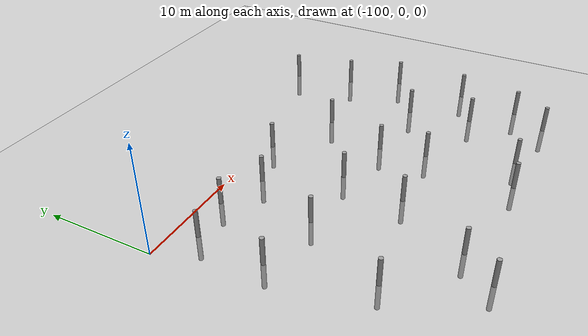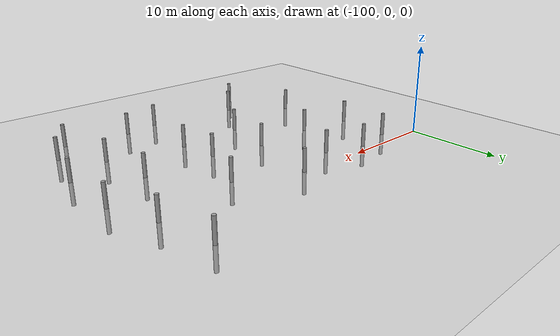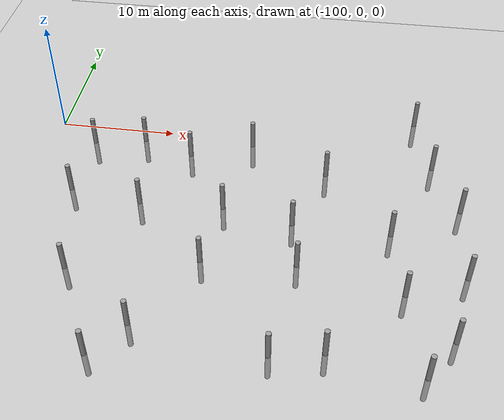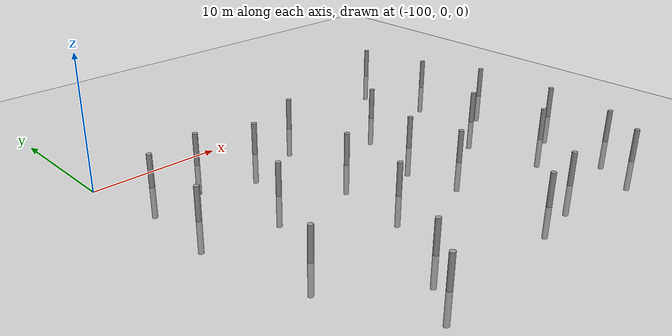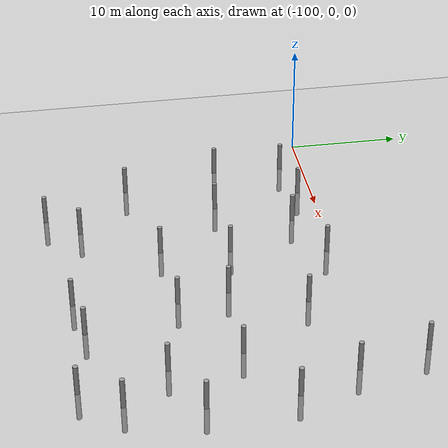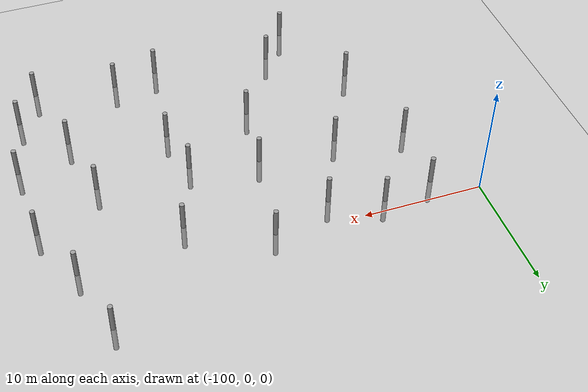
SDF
<sdf version="1.6">
 <world name="default">
  <model name="ground_plane">
   <static>1</static>
   <link name="link">
    <collision name="collision">
     <geometry><plane><normal>0 0 1</normal><size>100 100</size></plane></geometry>
     <surface><friction><ode><mu>100</mu><mu2>50</mu2></ode></friction></surface>
    </collision>
    <visual name="visual">
     <cast_shadows>0</cast_shadows>
     <geometry><plane><normal>0 0 1</normal><size>100 100</size></plane></geometry>
     <material>
      <script><uri>file://media/materials/scripts/gazebo.material</uri><name>Gazebo/Grey</name></script>
     </material>
    </visual>
   </link>
  </model>
  <model name="empty_pillars_6">
   <model name="empty_pillar_clone_53">
    <link name="link">
     <inertial>
      <mass>1</mass>
      <inertia><ixx>0.145833</ixx><ixy>0</ixy><ixz>0</ixz><iyy>0.145833</iyy><iyz>0</iyz><izz>0.125</izz></inertia>
     </inertial>
     <visual name="visual">
      <geometry><cylinder><radius>0.2</radius><length>5</length></cylinder></geometry>
      <material>
       <script><name>Gazebo/Grey</name><uri>file://media/materials/scripts/gazebo.material</uri></script>
       <shader type="vertex"><normal_map>__default__</normal_map></shader>
       <ambient>0.3 0.3 0.3 1</ambient>
       <diffuse>0.7 0.7 0.7 1</diffuse>
       <specular>0.01 0.01 0.01 1</specular>
       <emissive>0 0 0 1</emissive>
      </material>
     </visual>
     <collision name="collision">
      <geometry><cylinder><radius>0.05</radius><length>5</length></cylinder></geometry>
      <surface>
       <friction>
        <ode><mu>1</mu><mu2>1</mu2><fdir1>0 0 0</fdir1><slip1>0</slip1><slip2>0</slip2></ode>
        <torsional>
         <coefficient>1</coefficient>
         <patch_radius>0</patch_radius>
         <surface_radius>0</surface_radius>
         <use_patch_radius>1</use_patch_radius>
         <ode><slip>0</slip></ode>
        </torsional>
       </friction>
       <bounce><restitution_coefficient>0</restitution_coefficient><threshold>1e+06</threshold></bounce>
       <contact>
        <collide_without_contact>0</collide_without_contact>
        <collide_without_contact_bitmask>1</collide_without_contact_bitmask>
        <collide_bitmask>1</collide_bitmask>
        <ode>
         <soft_cfm>0</soft_cfm>
         <soft_erp>0.2</soft_erp>
         <kp>1e+13</kp>
         <kd>1</kd>
         <max_vel>0.01</max_vel>
         <min_depth>0</min_depth>
        </ode>
        <bullet>
         <split_impulse>1</split_impulse>
         <split_impulse_penetration_threshold>-0.01</split_impulse_penetration_threshold>
         <soft_cfm>0</soft_cfm>
         <soft_erp>0.2</soft_erp>
         <kp>1e+13</kp>
         <kd>1</kd>
        </bullet>
       </contact>
      </surface>
     </collision>
    </link>
    <static>0</static>
    <pose>7.32522 -23.3523 0 0 -0 0</pose>
   </model>
   <static>0</static>
   <pose>-75.8833 27.5686 0 0 -0 0</pose>
  </model>
  <model name="empty_pillars_7">
   <link name="link">
    <inertial>
     <mass>1</mass>
     <inertia><ixx>0.145833</ixx><ixy>0</ixy><ixz>0</ixz><iyy>0.145833</iyy><iyz>0</iyz><izz>0.125</izz></inertia>
    </inertial>
    <visual name="visual">
     <geometry><cylinder><radius>0.2</radius><length>5</length></cylinder></geometry>
     <material>
      <script><name>Gazebo/Grey</name><uri>file://media/materials/scripts/gazebo.material</uri></script>
      <shader type="vertex"><normal_map>__default__</normal_map></shader>
      <ambient>0.3 0.3 0.3 1</ambient>
      <diffuse>0.7 0.7 0.7 1</diffuse>
      <specular>0.01 0.01 0.01 1</specular>
      <emissive>0 0 0 1</emissive>
     </material>
    </visual>
    <collision name="collision">
     <geometry><cylinder><radius>0.05</radius><length>5</length></cylinder></geometry>
     <surface>
      <friction>
       <ode><mu>1</mu><mu2>1</mu2><fdir1>0 0 0</fdir1><slip1>0</slip1><slip2>0</slip2></ode>
       <torsional>
        <coefficient>1</coefficient>
        <patch_radius>0</patch_radius>
        <surface_radius>0</surface_radius>
        <use_patch_radius>1</use_patch_radius>
        <ode><slip>0</slip></ode>
       </torsional>
      </friction>
      <bounce><restitution_coefficient>0</restitution_coefficient><threshold>1e+06</threshold></bounce>
      <contact>
       <collide_without_contact>0</collide_without_contact>
       <collide_without_contact_bitmask>1</collide_without_contact_bitmask>
       <collide_bitmask>1</collide_bitmask>
       <ode>
        <soft_cfm>0</soft_cfm>
        <soft_erp>0.2</soft_erp>
        <kp>1e+13</kp>
        <kd>1</kd>
        <max_vel>0.01</max_vel>
        <min_depth>0</min_depth>
       </ode>
       <bullet>
        <split_impulse>1</split_impulse>
        <split_impulse_penetration_threshold>-0.01</split_impulse_penetration_threshold>
        <soft_cfm>0</soft_cfm>
        <soft_erp>0.2</soft_erp>
        <kp>1e+13</kp>
        <kd>1</kd>
       </bullet>
      </contact>
     </surface>
    </collision>
   </link>
   <model name="empty_pillar">
    <link name="link">
     <inertial>
      <mass>1</mass>
      <inertia><ixx>0.145833</ixx><ixy>0</ixy><ixz>0</ixz><iyy>0.145833</iyy><iyz>0</iyz><izz>0.125</izz></inertia>
     </inertial>
     <visual name="visual">
      <geometry><cylinder><radius>0.2</radius><length>5</length></cylinder></geometry>
      <material>
       <script><name>Gazebo/Grey</name><uri>file://media/materials/scripts/gazebo.material</uri></script>
       <shader type="vertex"><normal_map>__default__</normal_map></shader>
       <ambient>0.3 0.3 0.3 1</ambient>
       <diffuse>0.7 0.7 0.7 1</diffuse>
       <specular>0.01 0.01 0.01 1</specular>
       <emissive>0 0 0 1</emissive>
      </material>
     </visual>
     <collision name="collision">
      <geometry><cylinder><radius>0.05</radius><length>5</length></cylinder></geometry>
      <surface>
       <friction>
        <ode><mu>1</mu><mu2>1</mu2><fdir1>0 0 0</fdir1><slip1>0</slip1><slip2>0</slip2></ode>
        <torsional>
         <coefficient>1</coefficient>
         <patch_radius>0</patch_radius>
         <surface_radius>0</surface_radius>
         <use_patch_radius>1</use_patch_radius>
         <ode><slip>0</slip></ode>
        </torsional>
       </friction>
       <bounce><restitution_coefficient>0</restitution_coefficient><threshold>1e+06</threshold></bounce>
       <contact>
        <collide_without_contact>0</collide_without_contact>
        <collide_without_contact_bitmask>1</collide_without_contact_bitmask>
        <collide_bitmask>1</collide_bitmask>
        <ode>
         <soft_cfm>0</soft_cfm>
         <soft_erp>0.2</soft_erp>
         <kp>1e+13</kp>
         <kd>1</kd>
         <max_vel>0.01</max_vel>
         <min_depth>0</min_depth>
        </ode>
        <bullet>
         <split_impulse>1</split_impulse>
         <split_impulse_penetration_threshold>-0.01</split_impulse_penetration_threshold>
         <soft_cfm>0</soft_cfm>
         <soft_erp>0.2</soft_erp>
         <kp>1e+13</kp>
         <kd>1</kd>
        </bullet>
       </contact>
      </surface>
     </collision>
    </link>
    <static>0</static>
    <pose>-3.84527 -0.717439 0 0 -0 0</pose>
   </model>
   <model name="empty_pillar_clone_1">
    <link name="link">
     <inertial>
      <mass>1</mass>
      <inertia><ixx>0.145833</ixx><ixy>0</ixy><ixz>0</ixz><iyy>0.145833</iyy><iyz>0</iyz><izz>0.125</izz></inertia>
     </inertial>
     <visual name="visual">
      <geometry><cylinder><radius>0.2</radius><length>5</length></cylinder></geometry>
      <material>
       <script><name>Gazebo/Grey</name><uri>file://media/materials/scripts/gazebo.material</uri></script>
       <shader type="vertex"><normal_map>__default__</normal_map></shader>
       <ambient>0.3 0.3 0.3 1</ambient>
       <diffuse>0.7 0.7 0.7 1</diffuse>
       <specular>0.01 0.01 0.01 1</specular>
       <emissive>0 0 0 1</emissive>
      </material>
     </visual>
     <collision name="collision">
      <geometry><cylinder><radius>0.05</radius><length>5</length></cylinder></geometry>
      <surface>
       <friction>
        <ode><mu>1</mu><mu2>1</mu2><fdir1>0 0 0</fdir1><slip1>0</slip1><slip2>0</slip2></ode>
        <torsional>
         <coefficient>1</coefficient>
         <patch_radius>0</patch_radius>
         <surface_radius>0</surface_radius>
         <use_patch_radius>1</use_patch_radius>
         <ode><slip>0</slip></ode>
        </torsional>
       </friction>
       <bounce><restitution_coefficient>0</restitution_coefficient><threshold>1e+06</threshold></bounce>
       <contact>
        <collide_without_contact>0</collide_without_contact>
        <collide_without_contact_bitmask>1</collide_without_contact_bitmask>
        <collide_bitmask>1</collide_bitmask>
        <ode>
         <soft_cfm>0</soft_cfm>
         <soft_erp>0.2</soft_erp>
         <kp>1e+13</kp>
         <kd>1</kd>
         <max_vel>0.01</max_vel>
         <min_depth>0</min_depth>
        </ode>
        <bullet>
         <split_impulse>1</split_impulse>
         <split_impulse_penetration_threshold>-0.01</split_impulse_penetration_threshold>
         <soft_cfm>0</soft_cfm>
         <soft_erp>0.2</soft_erp>
         <kp>1e+13</kp>
         <kd>1</kd>
        </bullet>
       </contact>
      </surface>
     </collision>
    </link>
    <static>0</static>
    <pose>8.92248 2.14838 0 0 -0 0</pose>
   </model>
   <model name="empty_pillar_clone_14">
    <link name="link">
     <inertial>
      <mass>1</mass>
      <inertia><ixx>0.145833</ixx><ixy>0</ixy><ixz>0</ixz><iyy>0.145833</iyy><iyz>0</iyz><izz>0.125</izz></inertia>
     </inertial>
     <visual name="visual">
      <geometry><cylinder><radius>0.2</radius><length>5</length></cylinder></geometry>
      <material>
       <script><name>Gazebo/Grey</name><uri>file://media/materials/scripts/gazebo.material</uri></script>
       <shader type="vertex"><normal_map>__default__</normal_map></shader>
       <ambient>0.3 0.3 0.3 1</ambient>
       <diffuse>0.7 0.7 0.7 1</diffuse>
       <specular>0.01 0.01 0.01 1</specular>
       <emissive>0 0 0 1</emissive>
      </material>
     </visual>
     <collision name="collision">
      <geometry><cylinder><radius>0.05</radius><length>5</length></cylinder></geometry>
      <surface>
       <friction>
        <ode><mu>1</mu><mu2>1</mu2><fdir1>0 0 0</fdir1><slip1>0</slip1><slip2>0</slip2></ode>
        <torsional>
         <coefficient>1</coefficient>
         <patch_radius>0</patch_radius>
         <surface_radius>0</surface_radius>
         <use_patch_radius>1</use_patch_radius>
         <ode><slip>0</slip></ode>
        </torsional>
       </friction>
       <bounce><restitution_coefficient>0</restitution_coefficient><threshold>1e+06</threshold></bounce>
       <contact>
        <collide_without_contact>0</collide_without_contact>
        <collide_without_contact_bitmask>1</collide_without_contact_bitmask>
        <collide_bitmask>1</collide_bitmask>
        <ode>
         <soft_cfm>0</soft_cfm>
         <soft_erp>0.2</soft_erp>
         <kp>1e+13</kp>
         <kd>1</kd>
         <max_vel>0.01</max_vel>
         <min_depth>0</min_depth>
        </ode>
        <bullet>
         <split_impulse>1</split_impulse>
         <split_impulse_penetration_threshold>-0.01</split_impulse_penetration_threshold>
         <soft_cfm>0</soft_cfm>
         <soft_erp>0.2</soft_erp>
         <kp>1e+13</kp>
         <kd>1</kd>
        </bullet>
       </contact>
      </surface>
     </collision>
    </link>
    <static>0</static>
    <pose>-14.0146 0.646152 0 0 -0 0</pose>
   </model>
   <model name="empty_pillar_clone_16">
    <link name="link">
     <inertial>
      <mass>1</mass>
      <inertia><ixx>0.145833</ixx><ixy>0</ixy><ixz>0</ixz><iyy>0.145833</iyy><iyz>0</iyz><izz>0.125</izz></inertia>
     </inertial>
     <visual name="visual">
      <geometry><cylinder><radius>0.2</radius><length>5</length></cylinder></geometry>
      <material>
       <script><name>Gazebo/Grey</name><uri>file://media/materials/scripts/gazebo.material</uri></script>
       <shader type="vertex"><normal_map>__default__</normal_map></shader>
       <ambient>0.3 0.3 0.3 1</ambient>
       <diffuse>0.7 0.7 0.7 1</diffuse>
       <specular>0.01 0.01 0.01 1</specular>
       <emissive>0 0 0 1</emissive>
      </material>
     </visual>
     <collision name="collision">
      <geometry><cylinder><radius>0.05</radius><length>5</length></cylinder></geometry>
      <surface>
       <friction>
        <ode><mu>1</mu><mu2>1</mu2><fdir1>0 0 0</fdir1><slip1>0</slip1><slip2>0</slip2></ode>
        <torsional>
         <coefficient>1</coefficient>
         <patch_radius>0</patch_radius>
         <surface_radius>0</surface_radius>
         <use_patch_radius>1</use_patch_radius>
         <ode><slip>0</slip></ode>
        </torsional>
       </friction>
       <bounce><restitution_coefficient>0</restitution_coefficient><threshold>1e+06</threshold></bounce>
       <contact>
        <collide_without_contact>0</collide_without_contact>
        <collide_without_contact_bitmask>1</collide_without_contact_bitmask>
        <collide_bitmask>1</collide_bitmask>
        <ode>
         <soft_cfm>0</soft_cfm>
         <soft_erp>0.2</soft_erp>
         <kp>1e+13</kp>
         <kd>1</kd>
         <max_vel>0.01</max_vel>
         <min_depth>0</min_depth>
        </ode>
        <bullet>
         <split_impulse>1</split_impulse>
         <split_impulse_penetration_threshold>-0.01</split_impulse_penetration_threshold>
         <soft_cfm>0</soft_cfm>
         <soft_erp>0.2</soft_erp>
         <kp>1e+13</kp>
         <kd>1</kd>
        </bullet>
       </contact>
      </surface>
     </collision>
    </link>
    <static>0</static>
    <pose>-9.20789 13.0504 0 0 -0 0</pose>
   </model>
   <model name="empty_pillar_clone_17">
    <link name="link">
     <inertial>
      <mass>1</mass>
      <inertia><ixx>0.145833</ixx><ixy>0</ixy><ixz>0</ixz><iyy>0.145833</iyy><iyz>0</iyz><izz>0.125</izz></inertia>
     </inertial>
     <visual name="visual">
      <geometry><cylinder><radius>0.2</radius><length>5</length></cylinder></geometry>
      <material>
       <script><name>Gazebo/Grey</name><uri>file://media/materials/scripts/gazebo.material</uri></script>
       <shader type="vertex"><normal_map>__default__</normal_map></shader>
       <ambient>0.3 0.3 0.3 1</ambient>
       <diffuse>0.7 0.7 0.7 1</diffuse>
       <specular>0.01 0.01 0.01 1</specular>
       <emissive>0 0 0 1</emissive>
      </material>
     </visual>
     <collision name="collision">
      <geometry><cylinder><radius>0.05</radius><length>5</length></cylinder></geometry>
      <surface>
       <friction>
        <ode><mu>1</mu><mu2>1</mu2><fdir1>0 0 0</fdir1><slip1>0</slip1><slip2>0</slip2></ode>
        <torsional>
         <coefficient>1</coefficient>
         <patch_radius>0</patch_radius>
         <surface_radius>0</surface_radius>
         <use_patch_radius>1</use_patch_radius>
         <ode><slip>0</slip></ode>
        </torsional>
       </friction>
       <bounce><restitution_coefficient>0</restitution_coefficient><threshold>1e+06</threshold></bounce>
       <contact>
        <collide_without_contact>0</collide_without_contact>
        <collide_without_contact_bitmask>1</collide_without_contact_bitmask>
        <collide_bitmask>1</collide_bitmask>
        <ode>
         <soft_cfm>0</soft_cfm>
         <soft_erp>0.2</soft_erp>
         <kp>1e+13</kp>
         <kd>1</kd>
         <max_vel>0.01</max_vel>
         <min_depth>0</min_depth>
        </ode>
        <bullet>
         <split_impulse>1</split_impulse>
         <split_impulse_penetration_threshold>-0.01</split_impulse_penetration_threshold>
         <soft_cfm>0</soft_cfm>
         <soft_erp>0.2</soft_erp>
         <kp>1e+13</kp>
         <kd>1</kd>
        </bullet>
       </contact>
      </surface>
     </collision>
    </link>
    <static>0</static>
    <pose>-16.0449 12.755 0 0 -0 0</pose>
   </model>
   <model name="empty_pillar_clone_18">
    <link name="link">
     <inertial>
      <mass>1</mass>
      <inertia><ixx>0.145833</ixx><ixy>0</ixy><ixz>0</ixz><iyy>0.145833</iyy><iyz>0</iyz><izz>0.125</izz></inertia>
     </inertial>
     <visual name="visual">
      <geometry><cylinder><radius>0.2</radius><length>5</length></cylinder></geometry>
      <material>
       <script><name>Gazebo/Grey</name><uri>file://media/materials/scripts/gazebo.material</uri></script>
       <shader type="vertex"><normal_map>__default__</normal_map></shader>
       <ambient>0.3 0.3 0.3 1</ambient>
       <diffuse>0.7 0.7 0.7 1</diffuse>
       <specular>0.01 0.01 0.01 1</specular>
       <emissive>0 0 0 1</emissive>
      </material>
     </visual>
     <collision name="collision">
      <geometry><cylinder><radius>0.05</radius><length>5</length></cylinder></geometry>
      <surface>
       <friction>
        <ode><mu>1</mu><mu2>1</mu2><fdir1>0 0 0</fdir1><slip1>0</slip1><slip2>0</slip2></ode>
        <torsional>
         <coefficient>1</coefficient>
         <patch_radius>0</patch_radius>
         <surface_radius>0</surface_radius>
         <use_patch_radius>1</use_patch_radius>
         <ode><slip>0</slip></ode>
        </torsional>
       </friction>
       <bounce><restitution_coefficient>0</restitution_coefficient><threshold>1e+06</threshold></bounce>
       <contact>
        <collide_without_contact>0</collide_without_contact>
        <collide_without_contact_bitmask>1</collide_without_contact_bitmask>
        <collide_bitmask>1</collide_bitmask>
        <ode>
         <soft_cfm>0</soft_cfm>
         <soft_erp>0.2</soft_erp>
         <kp>1e+13</kp>
         <kd>1</kd>
         <max_vel>0.01</max_vel>
         <min_depth>0</min_depth>
        </ode>
        <bullet>
         <split_impulse>1</split_impulse>
         <split_impulse_penetration_threshold>-0.01</split_impulse_penetration_threshold>
         <soft_cfm>0</soft_cfm>
         <soft_erp>0.2</soft_erp>
         <kp>1e+13</kp>
         <kd>1</kd>
        </bullet>
       </contact>
      </surface>
     </collision>
    </link>
    <static>0</static>
    <pose>-20.0146 5.15966 0 0 -0 0</pose>
   </model>
   <model name="empty_pillar_clone_19">
    <link name="link">
     <inertial>
      <mass>1</mass>
      <inertia><ixx>0.145833</ixx><ixy>0</ixy><ixz>0</ixz><iyy>0.145833</iyy><iyz>0</iyz><izz>0.125</izz></inertia>
     </inertial>
     <visual name="visual">
      <geometry><cylinder><radius>0.2</radius><length>5</length></cylinder></geometry>
      <material>
       <script><name>Gazebo/Grey</name><uri>file://media/materials/scripts/gazebo.material</uri></script>
       <shader type="vertex"><normal_map>__default__</normal_map></shader>
       <ambient>0.3 0.3 0.3 1</ambient>
       <diffuse>0.7 0.7 0.7 1</diffuse>
       <specular>0.01 0.01 0.01 1</specular>
       <emissive>0 0 0 1</emissive>
      </material>
     </visual>
     <collision name="collision">
      <geometry><cylinder><radius>0.05</radius><length>5</length></cylinder></geometry>
      <surface>
       <friction>
        <ode><mu>1</mu><mu2>1</mu2><fdir1>0 0 0</fdir1><slip1>0</slip1><slip2>0</slip2></ode>
        <torsional>
         <coefficient>1</coefficient>
         <patch_radius>0</patch_radius>
         <surface_radius>0</surface_radius>
         <use_patch_radius>1</use_patch_radius>
         <ode><slip>0</slip></ode>
        </torsional>
       </friction>
       <bounce><restitution_coefficient>0</restitution_coefficient><threshold>1e+06</threshold></bounce>
       <contact>
        <collide_without_contact>0</collide_without_contact>
        <collide_without_contact_bitmask>1</collide_without_contact_bitmask>
        <collide_bitmask>1</collide_bitmask>
        <ode>
         <soft_cfm>0</soft_cfm>
         <soft_erp>0.2</soft_erp>
         <kp>1e+13</kp>
         <kd>1</kd>
         <max_vel>0.01</max_vel>
         <min_depth>0</min_depth>
        </ode>
        <bullet>
         <split_impulse>1</split_impulse>
         <split_impulse_penetration_threshold>-0.01</split_impulse_penetration_threshold>
         <soft_cfm>0</soft_cfm>
         <soft_erp>0.2</soft_erp>
         <kp>1e+13</kp>
         <kd>1</kd>
        </bullet>
       </contact>
      </surface>
     </collision>
    </link>
    <static>0</static>
    <pose>-10.0146 7.15966 0 0 -0 0</pose>
   </model>
   <model name="empty_pillar_clone_2">
    <link name="link">
     <inertial>
      <mass>1</mass>
      <inertia><ixx>0.145833</ixx><ixy>0</ixy><ixz>0</ixz><iyy>0.145833</iyy><iyz>0</iyz><izz>0.125</izz></inertia>
     </inertial>
     <visual name="visual">
      <geometry><cylinder><radius>0.2</radius><length>5</length></cylinder></geometry>
      <material>
       <script><name>Gazebo/Grey</name><uri>file://media/materials/scripts/gazebo.material</uri></script>
       <shader type="vertex"><normal_map>__default__</normal_map></shader>
       <ambient>0.3 0.3 0.3 1</ambient>
       <diffuse>0.7 0.7 0.7 1</diffuse>
       <specular>0.01 0.01 0.01 1</specular>
       <emissive>0 0 0 1</emissive>
      </material>
     </visual>
     <collision name="collision">
      <geometry><cylinder><radius>0.05</radius><length>5</length></cylinder></geometry>
      <surface>
       <friction>
        <ode><mu>1</mu><mu2>1</mu2><fdir1>0 0 0</fdir1><slip1>0</slip1><slip2>0</slip2></ode>
        <torsional>
         <coefficient>1</coefficient>
         <patch_radius>0</patch_radius>
         <surface_radius>0</surface_radius>
         <use_patch_radius>1</use_patch_radius>
         <ode><slip>0</slip></ode>
        </torsional>
       </friction>
       <bounce><restitution_coefficient>0</restitution_coefficient><threshold>1e+06</threshold></bounce>
       <contact>
        <collide_without_contact>0</collide_without_contact>
        <collide_without_contact_bitmask>1</collide_without_contact_bitmask>
        <collide_bitmask>1</collide_bitmask>
        <ode>
         <soft_cfm>0</soft_cfm>
         <soft_erp>0.2</soft_erp>
         <kp>1e+13</kp>
         <kd>1</kd>
         <max_vel>0.01</max_vel>
         <min_depth>0</min_depth>
        </ode>
        <bullet>
         <split_impulse>1</split_impulse>
         <split_impulse_penetration_threshold>-0.01</split_impulse_penetration_threshold>
         <soft_cfm>0</soft_cfm>
         <soft_erp>0.2</soft_erp>
         <kp>1e+13</kp>
         <kd>1</kd>
        </bullet>
       </contact>
      </surface>
     </collision>
    </link>
    <static>0</static>
    <pose>6.92427 -1.06221 0 0 -0 0</pose>
   </model>
   <model name="empty_pillar_clone_20">
    <link name="link">
     <inertial>
      <mass>1</mass>
      <inertia><ixx>0.145833</ixx><ixy>0</ixy><ixz>0</ixz><iyy>0.145833</iyy><iyz>0</iyz><izz>0.125</izz></inertia>
     </inertial>
     <visual name="visual">
      <geometry><cylinder><radius>0.2</radius><length>5</length></cylinder></geometry>
      <material>
       <script><name>Gazebo/Grey</name><uri>file://media/materials/scripts/gazebo.material</uri></script>
       <shader type="vertex"><normal_map>__default__</normal_map></shader>
       <ambient>0.3 0.3 0.3 1</ambient>
       <diffuse>0.7 0.7 0.7 1</diffuse>
       <specular>0.01 0.01 0.01 1</specular>
       <emissive>0 0 0 1</emissive>
      </material>
     </visual>
     <collision name="collision">
      <geometry><cylinder><radius>0.05</radius><length>5</length></cylinder></geometry>
      <surface>
       <friction>
        <ode><mu>1</mu><mu2>1</mu2><fdir1>0 0 0</fdir1><slip1>0</slip1><slip2>0</slip2></ode>
        <torsional>
         <coefficient>1</coefficient>
         <patch_radius>0</patch_radius>
         <surface_radius>0</surface_radius>
         <use_patch_radius>1</use_patch_radius>
         <ode><slip>0</slip></ode>
        </torsional>
       </friction>
       <bounce><restitution_coefficient>0</restitution_coefficient><threshold>1e+06</threshold></bounce>
       <contact>
        <collide_without_contact>0</collide_without_contact>
        <collide_without_contact_bitmask>1</collide_without_contact_bitmask>
        <collide_bitmask>1</collide_bitmask>
        <ode>
         <soft_cfm>0</soft_cfm>
         <soft_erp>0.2</soft_erp>
         <kp>1e+13</kp>
         <kd>1</kd>
         <max_vel>0.01</max_vel>
         <min_depth>0</min_depth>
        </ode>
        <bullet>
         <split_impulse>1</split_impulse>
         <split_impulse_penetration_threshold>-0.01</split_impulse_penetration_threshold>
         <soft_cfm>0</soft_cfm>
         <soft_erp>0.2</soft_erp>
         <kp>1e+13</kp>
         <kd>1</kd>
        </bullet>
       </contact>
      </surface>
     </collision>
    </link>
    <static>0</static>
    <pose>-13.0146 19.1597 0 0 -0 0</pose>
   </model>
   <model name="empty_pillar_clone_21">
    <link name="link">
     <inertial>
      <mass>1</mass>
      <inertia><ixx>0.145833</ixx><ixy>0</ixy><ixz>0</ixz><iyy>0.145833</iyy><iyz>0</iyz><izz>0.125</izz></inertia>
     </inertial>
     <visual name="visual">
      <geometry><cylinder><radius>0.2</radius><length>5</length></cylinder></geometry>
      <material>
       <script><name>Gazebo/Grey</name><uri>file://media/materials/scripts/gazebo.material</uri></script>
       <shader type="vertex"><normal_map>__default__</normal_map></shader>
       <ambient>0.3 0.3 0.3 1</ambient>
       <diffuse>0.7 0.7 0.7 1</diffuse>
       <specular>0.01 0.01 0.01 1</specular>
       <emissive>0 0 0 1</emissive>
      </material>
     </visual>
     <collision name="collision">
      <geometry><cylinder><radius>0.05</radius><length>5</length></cylinder></geometry>
      <surface>
       <friction>
        <ode><mu>1</mu><mu2>1</mu2><fdir1>0 0 0</fdir1><slip1>0</slip1><slip2>0</slip2></ode>
        <torsional>
         <coefficient>1</coefficient>
         <patch_radius>0</patch_radius>
         <surface_radius>0</surface_radius>
         <use_patch_radius>1</use_patch_radius>
         <ode><slip>0</slip></ode>
        </torsional>
       </friction>
       <bounce><restitution_coefficient>0</restitution_coefficient><threshold>1e+06</threshold></bounce>
       <contact>
        <collide_without_contact>0</collide_without_contact>
        <collide_without_contact_bitmask>1</collide_without_contact_bitmask>
        <collide_bitmask>1</collide_bitmask>
        <ode>
         <soft_cfm>0</soft_cfm>
         <soft_erp>0.2</soft_erp>
         <kp>1e+13</kp>
         <kd>1</kd>
         <max_vel>0.01</max_vel>
         <min_depth>0</min_depth>
        </ode>
        <bullet>
         <split_impulse>1</split_impulse>
         <split_impulse_penetration_threshold>-0.01</split_impulse_penetration_threshold>
         <soft_cfm>0</soft_cfm>
         <soft_erp>0.2</soft_erp>
         <kp>1e+13</kp>
         <kd>1</kd>
        </bullet>
       </contact>
      </surface>
     </collision>
    </link>
    <static>0</static>
    <pose>-21.7273 19.7662 0 0 -0 0</pose>
   </model>
   <model name="empty_pillar_clone_22">
    <link name="link">
     <inertial>
      <mass>1</mass>
      <inertia><ixx>0.145833</ixx><ixy>0</ixy><ixz>0</ixz><iyy>0.145833</iyy><iyz>0</iyz><izz>0.125</izz></inertia>
     </inertial>
     <visual name="visual">
      <geometry><cylinder><radius>0.2</radius><length>5</length></cylinder></geometry>
      <material>
       <script><name>Gazebo/Grey</name><uri>file://media/materials/scripts/gazebo.material</uri></script>
       <shader type="vertex"><normal_map>__default__</normal_map></shader>
       <ambient>0.3 0.3 0.3 1</ambient>
       <diffuse>0.7 0.7 0.7 1</diffuse>
       <specular>0.01 0.01 0.01 1</specular>
       <emissive>0 0 0 1</emissive>
      </material>
     </visual>
     <collision name="collision">
      <geometry><cylinder><radius>0.05</radius><length>5</length></cylinder></geometry>
      <surface>
       <friction>
        <ode><mu>1</mu><mu2>1</mu2><fdir1>0 0 0</fdir1><slip1>0</slip1><slip2>0</slip2></ode>
        <torsional>
         <coefficient>1</coefficient>
         <patch_radius>0</patch_radius>
         <surface_radius>0</surface_radius>
         <use_patch_radius>1</use_patch_radius>
         <ode><slip>0</slip></ode>
        </torsional>
       </friction>
       <bounce><restitution_coefficient>0</restitution_coefficient><threshold>1e+06</threshold></bounce>
       <contact>
        <collide_without_contact>0</collide_without_contact>
        <collide_without_contact_bitmask>1</collide_without_contact_bitmask>
        <collide_bitmask>1</collide_bitmask>
        <ode>
         <soft_cfm>0</soft_cfm>
         <soft_erp>0.2</soft_erp>
         <kp>1e+13</kp>
         <kd>1</kd>
         <max_vel>0.01</max_vel>
         <min_depth>0</min_depth>
        </ode>
        <bullet>
         <split_impulse>1</split_impulse>
         <split_impulse_penetration_threshold>-0.01</split_impulse_penetration_threshold>
         <soft_cfm>0</soft_cfm>
         <soft_erp>0.2</soft_erp>
         <kp>1e+13</kp>
         <kd>1</kd>
        </bullet>
       </contact>
      </surface>
     </collision>
    </link>
    <static>0</static>
    <pose>-17.3667 20.5782 0 0 -0 0</pose>
   </model>
   <model name="empty_pillar_clone_23">
    <link name="link">
     <inertial>
      <mass>1</mass>
      <inertia><ixx>0.145833</ixx><ixy>0</ixy><ixz>0</ixz><iyy>0.145833</iyy><iyz>0</iyz><izz>0.125</izz></inertia>
     </inertial>
     <visual name="visual">
      <geometry><cylinder><radius>0.2</radius><length>5</length></cylinder></geometry>
      <material>
       <script><name>Gazebo/Grey</name><uri>file://media/materials/scripts/gazebo.material</uri></script>
       <shader type="vertex"><normal_map>__default__</normal_map></shader>
       <ambient>0.3 0.3 0.3 1</ambient>
       <diffuse>0.7 0.7 0.7 1</diffuse>
       <specular>0.01 0.01 0.01 1</specular>
       <emissive>0 0 0 1</emissive>
      </material>
     </visual>
     <collision name="collision">
      <geometry><cylinder><radius>0.05</radius><length>5</length></cylinder></geometry>
      <surface>
       <friction>
        <ode><mu>1</mu><mu2>1</mu2><fdir1>0 0 0</fdir1><slip1>0</slip1><slip2>0</slip2></ode>
        <torsional>
         <coefficient>1</coefficient>
         <patch_radius>0</patch_radius>
         <surface_radius>0</surface_radius>
         <use_patch_radius>1</use_patch_radius>
         <ode><slip>0</slip></ode>
        </torsional>
       </friction>
       <bounce><restitution_coefficient>0</restitution_coefficient><threshold>1e+06</threshold></bounce>
       <contact>
        <collide_without_contact>0</collide_without_contact>
        <collide_without_contact_bitmask>1</collide_without_contact_bitmask>
        <collide_bitmask>1</collide_bitmask>
        <ode>
         <soft_cfm>0</soft_cfm>
         <soft_erp>0.2</soft_erp>
         <kp>1e+13</kp>
         <kd>1</kd>
         <max_vel>0.01</max_vel>
         <min_depth>0</min_depth>
        </ode>
        <bullet>
         <split_impulse>1</split_impulse>
         <split_impulse_penetration_threshold>-0.01</split_impulse_penetration_threshold>
         <soft_cfm>0</soft_cfm>
         <soft_erp>0.2</soft_erp>
         <kp>1e+13</kp>
         <kd>1</kd>
        </bullet>
       </contact>
      </surface>
     </collision>
    </link>
    <static>0</static>
    <pose>-1.21984 18.1273 0 0 -0 0</pose>
   </model>
   <model name="empty_pillar_clone_24">
    <link name="link">
     <inertial>
      <mass>1</mass>
      <inertia><ixx>0.145833</ixx><ixy>0</ixy><ixz>0</ixz><iyy>0.145833</iyy><iyz>0</iyz><izz>0.125</izz></inertia>
     </inertial>
     <visual name="visual">
      <geometry><cylinder><radius>0.2</radius><length>5</length></cylinder></geometry>
      <material>
       <script><name>Gazebo/Grey</name><uri>file://media/materials/scripts/gazebo.material</uri></script>
       <shader type="vertex"><normal_map>__default__</normal_map></shader>
       <ambient>0.3 0.3 0.3 1</ambient>
       <diffuse>0.7 0.7 0.7 1</diffuse>
       <specular>0.01 0.01 0.01 1</specular>
       <emissive>0 0 0 1</emissive>
      </material>
     </visual>
     <collision name="collision">
      <geometry><cylinder><radius>0.05</radius><length>5</length></cylinder></geometry>
      <surface>
       <friction>
        <ode><mu>1</mu><mu2>1</mu2><fdir1>0 0 0</fdir1><slip1>0</slip1><slip2>0</slip2></ode>
        <torsional>
         <coefficient>1</coefficient>
         <patch_radius>0</patch_radius>
         <surface_radius>0</surface_radius>
         <use_patch_radius>1</use_patch_radius>
         <ode><slip>0</slip></ode>
        </torsional>
       </friction>
       <bounce><restitution_coefficient>0</restitution_coefficient><threshold>1e+06</threshold></bounce>
       <contact>
        <collide_without_contact>0</collide_without_contact>
        <collide_without_contact_bitmask>1</collide_without_contact_bitmask>
        <collide_bitmask>1</collide_bitmask>
        <ode>
         <soft_cfm>0</soft_cfm>
         <soft_erp>0.2</soft_erp>
         <kp>1e+13</kp>
         <kd>1</kd>
         <max_vel>0.01</max_vel>
         <min_depth>0</min_depth>
        </ode>
        <bullet>
         <split_impulse>1</split_impulse>
         <split_impulse_penetration_threshold>-0.01</split_impulse_penetration_threshold>
         <soft_cfm>0</soft_cfm>
         <soft_erp>0.2</soft_erp>
         <kp>1e+13</kp>
         <kd>1</kd>
        </bullet>
       </contact>
      </surface>
     </collision>
    </link>
    <static>0</static>
    <pose>-3.46957 11.9413 0 0 -0 0</pose>
   </model>
   <model name="empty_pillar_clone_25">
    <link name="link">
     <inertial>
      <mass>1</mass>
      <inertia><ixx>0.145833</ixx><ixy>0</ixy><ixz>0</ixz><iyy>0.145833</iyy><iyz>0</iyz><izz>0.125</izz></inertia>
     </inertial>
     <visual name="visual">
      <geometry><cylinder><radius>0.2</radius><length>5</length></cylinder></geometry>
      <material>
       <script><name>Gazebo/Grey</name><uri>file://media/materials/scripts/gazebo.material</uri></script>
       <shader type="vertex"><normal_map>__default__</normal_map></shader>
       <ambient>0.3 0.3 0.3 1</ambient>
       <diffuse>0.7 0.7 0.7 1</diffuse>
       <specular>0.01 0.01 0.01 1</specular>
       <emissive>0 0 0 1</emissive>
      </material>
     </visual>
     <collision name="collision">
      <geometry><cylinder><radius>0.05</radius><length>5</length></cylinder></geometry>
      <surface>
       <friction>
        <ode><mu>1</mu><mu2>1</mu2><fdir1>0 0 0</fdir1><slip1>0</slip1><slip2>0</slip2></ode>
        <torsional>
         <coefficient>1</coefficient>
         <patch_radius>0</patch_radius>
         <surface_radius>0</surface_radius>
         <use_patch_radius>1</use_patch_radius>
         <ode><slip>0</slip></ode>
        </torsional>
       </friction>
       <bounce><restitution_coefficient>0</restitution_coefficient><threshold>1e+06</threshold></bounce>
       <contact>
        <collide_without_contact>0</collide_without_contact>
        <collide_without_contact_bitmask>1</collide_without_contact_bitmask>
        <collide_bitmask>1</collide_bitmask>
        <ode>
         <soft_cfm>0</soft_cfm>
         <soft_erp>0.2</soft_erp>
         <kp>1e+13</kp>
         <kd>1</kd>
         <max_vel>0.01</max_vel>
         <min_depth>0</min_depth>
        </ode>
        <bullet>
         <split_impulse>1</split_impulse>
         <split_impulse_penetration_threshold>-0.01</split_impulse_penetration_threshold>
         <soft_cfm>0</soft_cfm>
         <soft_erp>0.2</soft_erp>
         <kp>1e+13</kp>
         <kd>1</kd>
        </bullet>
       </contact>
      </surface>
     </collision>
    </link>
    <static>0</static>
    <pose>-7.86239 21.1314 0 0 -0 0</pose>
   </model>
   <model name="empty_pillar_clone_26">
    <link name="link">
     <inertial>
      <mass>1</mass>
      <inertia><ixx>0.145833</ixx><ixy>0</ixy><ixz>0</ixz><iyy>0.145833</iyy><iyz>0</iyz><izz>0.125</izz></inertia>
     </inertial>
     <visual name="visual">
      <geometry><cylinder><radius>0.2</radius><length>5</length></cylinder></geometry>
      <material>
       <script><name>Gazebo/Grey</name><uri>file://media/materials/scripts/gazebo.material</uri></script>
       <shader type="vertex"><normal_map>__default__</normal_map></shader>
       <ambient>0.3 0.3 0.3 1</ambient>
       <diffuse>0.7 0.7 0.7 1</diffuse>
       <specular>0.01 0.01 0.01 1</specular>
       <emissive>0 0 0 1</emissive>
      </material>
     </visual>
     <collision name="collision">
      <geometry><cylinder><radius>0.05</radius><length>5</length></cylinder></geometry>
      <surface>
       <friction>
        <ode><mu>1</mu><mu2>1</mu2><fdir1>0 0 0</fdir1><slip1>0</slip1><slip2>0</slip2></ode>
        <torsional>
         <coefficient>1</coefficient>
         <patch_radius>0</patch_radius>
         <surface_radius>0</surface_radius>
         <use_patch_radius>1</use_patch_radius>
         <ode><slip>0</slip></ode>
        </torsional>
       </friction>
       <bounce><restitution_coefficient>0</restitution_coefficient><threshold>1e+06</threshold></bounce>
       <contact>
        <collide_without_contact>0</collide_without_contact>
        <collide_without_contact_bitmask>1</collide_without_contact_bitmask>
        <collide_bitmask>1</collide_bitmask>
        <ode>
         <soft_cfm>0</soft_cfm>
         <soft_erp>0.2</soft_erp>
         <kp>1e+13</kp>
         <kd>1</kd>
         <max_vel>0.01</max_vel>
         <min_depth>0</min_depth>
        </ode>
        <bullet>
         <split_impulse>1</split_impulse>
         <split_impulse_penetration_threshold>-0.01</split_impulse_penetration_threshold>
         <soft_cfm>0</soft_cfm>
         <soft_erp>0.2</soft_erp>
         <kp>1e+13</kp>
         <kd>1</kd>
        </bullet>
       </contact>
      </surface>
     </collision>
    </link>
    <static>0</static>
    <pose>7.70652 20.1444 0 0 -0 0</pose>
   </model>
   <model name="empty_pillar_clone_27">
    <link name="link">
     <inertial>
      <mass>1</mass>
      <inertia><ixx>0.145833</ixx><ixy>0</ixy><ixz>0</ixz><iyy>0.145833</iyy><iyz>0</iyz><izz>0.125</izz></inertia>
     </inertial>
     <visual name="visual">
      <geometry><cylinder><radius>0.2</radius><length>5</length></cylinder></geometry>
      <material>
       <script><name>Gazebo/Grey</name><uri>file://media/materials/scripts/gazebo.material</uri></script>
       <shader type="vertex"><normal_map>__default__</normal_map></shader>
       <ambient>0.3 0.3 0.3 1</ambient>
       <diffuse>0.7 0.7 0.7 1</diffuse>
       <specular>0.01 0.01 0.01 1</specular>
       <emissive>0 0 0 1</emissive>
      </material>
     </visual>
     <collision name="collision">
      <geometry><cylinder><radius>0.05</radius><length>5</length></cylinder></geometry>
      <surface>
       <friction>
        <ode><mu>1</mu><mu2>1</mu2><fdir1>0 0 0</fdir1><slip1>0</slip1><slip2>0</slip2></ode>
        <torsional>
         <coefficient>1</coefficient>
         <patch_radius>0</patch_radius>
         <surface_radius>0</surface_radius>
         <use_patch_radius>1</use_patch_radius>
         <ode><slip>0</slip></ode>
        </torsional>
       </friction>
       <bounce><restitution_coefficient>0</restitution_coefficient><threshold>1e+06</threshold></bounce>
       <contact>
        <collide_without_contact>0</collide_without_contact>
        <collide_without_contact_bitmask>1</collide_without_contact_bitmask>
        <collide_bitmask>1</collide_bitmask>
        <ode>
         <soft_cfm>0</soft_cfm>
         <soft_erp>0.2</soft_erp>
         <kp>1e+13</kp>
         <kd>1</kd>
         <max_vel>0.01</max_vel>
         <min_depth>0</min_depth>
        </ode>
        <bullet>
         <split_impulse>1</split_impulse>
         <split_impulse_penetration_threshold>-0.01</split_impulse_penetration_threshold>
         <soft_cfm>0</soft_cfm>
         <soft_erp>0.2</soft_erp>
         <kp>1e+13</kp>
         <kd>1</kd>
        </bullet>
       </contact>
      </surface>
     </collision>
    </link>
    <static>0</static>
    <pose>4.32163 11.823 0 0 -0 0</pose>
   </model>
   <model name="empty_pillar_clone_29">
    <link name="link">
     <inertial>
      <mass>1</mass>
      <inertia><ixx>0.145833</ixx><ixy>0</ixy><ixz>0</ixz><iyy>0.145833</iyy><iyz>0</iyz><izz>0.125</izz></inertia>
     </inertial>
     <visual name="visual">
      <geometry><cylinder><radius>0.2</radius><length>5</length></cylinder></geometry>
      <material>
       <script><name>Gazebo/Grey</name><uri>file://media/materials/scripts/gazebo.material</uri></script>
       <shader type="vertex"><normal_map>__default__</normal_map></shader>
       <ambient>0.3 0.3 0.3 1</ambient>
       <diffuse>0.7 0.7 0.7 1</diffuse>
       <specular>0.01 0.01 0.01 1</specular>
       <emissive>0 0 0 1</emissive>
      </material>
     </visual>
     <collision name="collision">
      <geometry><cylinder><radius>0.05</radius><length>5</length></cylinder></geometry>
      <surface>
       <friction>
        <ode><mu>1</mu><mu2>1</mu2><fdir1>0 0 0</fdir1><slip1>0</slip1><slip2>0</slip2></ode>
        <torsional>
         <coefficient>1</coefficient>
         <patch_radius>0</patch_radius>
         <surface_radius>0</surface_radius>
         <use_patch_radius>1</use_patch_radius>
         <ode><slip>0</slip></ode>
        </torsional>
       </friction>
       <bounce><restitution_coefficient>0</restitution_coefficient><threshold>1e+06</threshold></bounce>
       <contact>
        <collide_without_contact>0</collide_without_contact>
        <collide_without_contact_bitmask>1</collide_without_contact_bitmask>
        <collide_bitmask>1</collide_bitmask>
        <ode>
         <soft_cfm>0</soft_cfm>
         <soft_erp>0.2</soft_erp>
         <kp>1e+13</kp>
         <kd>1</kd>
         <max_vel>0.01</max_vel>
         <min_depth>0</min_depth>
        </ode>
        <bullet>
         <split_impulse>1</split_impulse>
         <split_impulse_penetration_threshold>-0.01</split_impulse_penetration_threshold>
         <soft_cfm>0</soft_cfm>
         <soft_erp>0.2</soft_erp>
         <kp>1e+13</kp>
         <kd>1</kd>
        </bullet>
       </contact>
      </surface>
     </collision>
    </link>
    <static>0</static>
    <pose>10.08 8.0876 0 0 -0 0</pose>
   </model>
   <model name="empty_pillar_clone_38">
    <link name="link">
     <inertial>
      <mass>1</mass>
      <inertia><ixx>0.145833</ixx><ixy>0</ixy><ixz>0</ixz><iyy>0.145833</iyy><iyz>0</iyz><izz>0.125</izz></inertia>
     </inertial>
     <visual name="visual">
      <geometry><cylinder><radius>0.2</radius><length>5</length></cylinder></geometry>
      <material>
       <script><name>Gazebo/Grey</name><uri>file://media/materials/scripts/gazebo.material</uri></script>
       <shader type="vertex"><normal_map>__default__</normal_map></shader>
       <ambient>0.3 0.3 0.3 1</ambient>
       <diffuse>0.7 0.7 0.7 1</diffuse>
       <specular>0.01 0.01 0.01 1</specular>
       <emissive>0 0 0 1</emissive>
      </material>
     </visual>
     <collision name="collision">
      <geometry><cylinder><radius>0.05</radius><length>5</length></cylinder></geometry>
      <surface>
       <friction>
        <ode><mu>1</mu><mu2>1</mu2><fdir1>0 0 0</fdir1><slip1>0</slip1><slip2>0</slip2></ode>
        <torsional>
         <coefficient>1</coefficient>
         <patch_radius>0</patch_radius>
         <surface_radius>0</surface_radius>
         <use_patch_radius>1</use_patch_radius>
         <ode><slip>0</slip></ode>
        </torsional>
       </friction>
       <bounce><restitution_coefficient>0</restitution_coefficient><threshold>1e+06</threshold></bounce>
       <contact>
        <collide_without_contact>0</collide_without_contact>
        <collide_without_contact_bitmask>1</collide_without_contact_bitmask>
        <collide_bitmask>1</collide_bitmask>
        <ode>
         <soft_cfm>0</soft_cfm>
         <soft_erp>0.2</soft_erp>
         <kp>1e+13</kp>
         <kd>1</kd>
         <max_vel>0.01</max_vel>
         <min_depth>0</min_depth>
        </ode>
        <bullet>
         <split_impulse>1</split_impulse>
         <split_impulse_penetration_threshold>-0.01</split_impulse_penetration_threshold>
         <soft_cfm>0</soft_cfm>
         <soft_erp>0.2</soft_erp>
         <kp>1e+13</kp>
         <kd>1</kd>
        </bullet>
       </contact>
      </surface>
     </collision>
    </link>
    <static>0</static>
    <pose>-16.33 -2.21607 0 0 -0 0</pose>
   </model>
   <model name="empty_pillar_clone_49">
    <link name="link">
     <inertial>
      <mass>1</mass>
      <inertia><ixx>0.145833</ixx><ixy>0</ixy><ixz>0</ixz><iyy>0.145833</iyy><iyz>0</iyz><izz>0.125</izz></inertia>
     </inertial>
     <visual name="visual">
      <geometry><cylinder><radius>0.2</radius><length>5</length></cylinder></geometry>
      <material>
       <script><name>Gazebo/Grey</name><uri>file://media/materials/scripts/gazebo.material</uri></script>
       <shader type="vertex"><normal_map>__default__</normal_map></shader>
       <ambient>0.3 0.3 0.3 1</ambient>
       <diffuse>0.7 0.7 0.7 1</diffuse>
       <specular>0.01 0.01 0.01 1</specular>
       <emissive>0 0 0 1</emissive>
      </material>
     </visual>
     <collision name="collision">
      <geometry><cylinder><radius>0.05</radius><length>5</length></cylinder></geometry>
      <surface>
       <friction>
        <ode><mu>1</mu><mu2>1</mu2><fdir1>0 0 0</fdir1><slip1>0</slip1><slip2>0</slip2></ode>
        <torsional>
         <coefficient>1</coefficient>
         <patch_radius>0</patch_radius>
         <surface_radius>0</surface_radius>
         <use_patch_radius>1</use_patch_radius>
         <ode><slip>0</slip></ode>
        </torsional>
       </friction>
       <bounce><restitution_coefficient>0</restitution_coefficient><threshold>1e+06</threshold></bounce>
       <contact>
        <collide_without_contact>0</collide_without_contact>
        <collide_without_contact_bitmask>1</collide_without_contact_bitmask>
        <collide_bitmask>1</collide_bitmask>
        <ode>
         <soft_cfm>0</soft_cfm>
         <soft_erp>0.2</soft_erp>
         <kp>1e+13</kp>
         <kd>1</kd>
         <max_vel>0.01</max_vel>
         <min_depth>0</min_depth>
        </ode>
        <bullet>
         <split_impulse>1</split_impulse>
         <split_impulse_penetration_threshold>-0.01</split_impulse_penetration_threshold>
         <soft_cfm>0</soft_cfm>
         <soft_erp>0.2</soft_erp>
         <kp>1e+13</kp>
         <kd>1</kd>
        </bullet>
       </contact>
      </surface>
     </collision>
    </link>
    <static>0</static>
    <pose>9.84768 15.1425 0 0 -0 0</pose>
   </model>
   <model name="empty_pillar_clone_50">
    <link name="link">
     <inertial>
      <mass>1</mass>
      <inertia><ixx>0.145833</ixx><ixy>0</ixy><ixz>0</ixz><iyy>0.145833</iyy><iyz>0</iyz><izz>0.125</izz></inertia>
     </inertial>
     <visual name="visual">
      <geometry><cylinder><radius>0.2</radius><length>5</length></cylinder></geometry>
      <material>
       <script><name>Gazebo/Grey</name><uri>file://media/materials/scripts/gazebo.material</uri></script>
       <shader type="vertex"><normal_map>__default__</normal_map></shader>
       <ambient>0.3 0.3 0.3 1</ambient>
       <diffuse>0.7 0.7 0.7 1</diffuse>
       <specular>0.01 0.01 0.01 1</specular>
       <emissive>0 0 0 1</emissive>
      </material>
     </visual>
     <collision name="collision">
      <geometry><cylinder><radius>0.05</radius><length>5</length></cylinder></geometry>
      <surface>
       <friction>
        <ode><mu>1</mu><mu2>1</mu2><fdir1>0 0 0</fdir1><slip1>0</slip1><slip2>0</slip2></ode>
        <torsional>
         <coefficient>1</coefficient>
         <patch_radius>0</patch_radius>
         <surface_radius>0</surface_radius>
         <use_patch_radius>1</use_patch_radius>
         <ode><slip>0</slip></ode>
        </torsional>
       </friction>
       <bounce><restitution_coefficient>0</restitution_coefficient><threshold>1e+06</threshold></bounce>
       <contact>
        <collide_without_contact>0</collide_without_contact>
        <collide_without_contact_bitmask>1</collide_without_contact_bitmask>
        <collide_bitmask>1</collide_bitmask>
        <ode>
         <soft_cfm>0</soft_cfm>
         <soft_erp>0.2</soft_erp>
         <kp>1e+13</kp>
         <kd>1</kd>
         <max_vel>0.01</max_vel>
         <min_depth>0</min_depth>
        </ode>
        <bullet>
         <split_impulse>1</split_impulse>
         <split_impulse_penetration_threshold>-0.01</split_impulse_penetration_threshold>
         <soft_cfm>0</soft_cfm>
         <soft_erp>0.2</soft_erp>
         <kp>1e+13</kp>
         <kd>1</kd>
        </bullet>
       </contact>
      </surface>
     </collision>
    </link>
    <static>0</static>
    <pose>-22.0498 13.6251 0 0 -0 0</pose>
   </model>
   <model name="empty_pillar_clone_56">
    <link name="link">
     <inertial>
      <mass>1</mass>
      <inertia><ixx>0.145833</ixx><ixy>0</ixy><ixz>0</ixz><iyy>0.145833</iyy><iyz>0</iyz><izz>0.125</izz></inertia>
     </inertial>
     <visual name="visual">
      <geometry><cylinder><radius>0.2</radius><length>5</length></cylinder></geometry>
      <material>
       <script><name>Gazebo/Grey</name><uri>file://media/materials/scripts/gazebo.material</uri></script>
       <shader type="vertex"><normal_map>__default__</normal_map></shader>
       <ambient>0.3 0.3 0.3 1</ambient>
       <diffuse>0.7 0.7 0.7 1</diffuse>
       <specular>0.01 0.01 0.01 1</specular>
       <emissive>0 0 0 1</emissive>
      </material>
     </visual>
     <collision name="collision">
      <geometry><cylinder><radius>0.05</radius><length>5</length></cylinder></geometry>
      <surface>
       <friction>
        <ode><mu>1</mu><mu2>1</mu2><fdir1>0 0 0</fdir1><slip1>0</slip1><slip2>0</slip2></ode>
        <torsional>
         <coefficient>1</coefficient>
         <patch_radius>0</patch_radius>
         <surface_radius>0</surface_radius>
         <use_patch_radius>1</use_patch_radius>
         <ode><slip>0</slip></ode>
        </torsional>
       </friction>
       <bounce><restitution_coefficient>0</restitution_coefficient><threshold>1e+06</threshold></bounce>
       <contact>
        <collide_without_contact>0</collide_without_contact>
        <collide_without_contact_bitmask>1</collide_without_contact_bitmask>
        <collide_bitmask>1</collide_bitmask>
        <ode>
         <soft_cfm>0</soft_cfm>
         <soft_erp>0.2</soft_erp>
         <kp>1e+13</kp>
         <kd>1</kd>
         <max_vel>0.01</max_vel>
         <min_depth>0</min_depth>
        </ode>
        <bullet>
         <split_impulse>1</split_impulse>
         <split_impulse_penetration_threshold>-0.01</split_impulse_penetration_threshold>
         <soft_cfm>0</soft_cfm>
         <soft_erp>0.2</soft_erp>
         <kp>1e+13</kp>
         <kd>1</kd>
        </bullet>
       </contact>
      </surface>
     </collision>
    </link>
    <static>0</static>
    <pose>-2.69782 7.67053 0 0 -0 0</pose>
   </model>
   <model name="empty_pillar_clone_57">
    <link name="link">
     <inertial>
      <mass>1</mass>
      <inertia><ixx>0.145833</ixx><ixy>0</ixy><ixz>0</ixz><iyy>0.145833</iyy><iyz>0</iyz><izz>0.125</izz></inertia>
     </inertial>
     <visual name="visual">
      <geometry><cylinder><radius>0.2</radius><length>5</length></cylinder></geometry>
      <material>
       <script><name>Gazebo/Grey</name><uri>file://media/materials/scripts/gazebo.material</uri></script>
       <shader type="vertex"><normal_map>__default__</normal_map></shader>
       <ambient>0.3 0.3 0.3 1</ambient>
       <diffuse>0.7 0.7 0.7 1</diffuse>
       <specular>0.01 0.01 0.01 1</specular>
       <emissive>0 0 0 1</emissive>
      </material>
     </visual>
     <collision name="collision">
      <geometry><cylinder><radius>0.05</radius><length>5</length></cylinder></geometry>
      <surface>
       <friction>
        <ode><mu>1</mu><mu2>1</mu2><fdir1>0 0 0</fdir1><slip1>0</slip1><slip2>0</slip2></ode>
        <torsional>
         <coefficient>1</coefficient>
         <patch_radius>0</patch_radius>
         <surface_radius>0</surface_radius>
         <use_patch_radius>1</use_patch_radius>
         <ode><slip>0</slip></ode>
        </torsional>
       </friction>
       <bounce><restitution_coefficient>0</restitution_coefficient><threshold>1e+06</threshold></bounce>
       <contact>
        <collide_without_contact>0</collide_without_contact>
        <collide_without_contact_bitmask>1</collide_without_contact_bitmask>
        <collide_bitmask>1</collide_bitmask>
        <ode>
         <soft_cfm>0</soft_cfm>
         <soft_erp>0.2</soft_erp>
         <kp>1e+13</kp>
         <kd>1</kd>
         <max_vel>0.01</max_vel>
         <min_depth>0</min_depth>
        </ode>
        <bullet>
         <split_impulse>1</split_impulse>
         <split_impulse_penetration_threshold>-0.01</split_impulse_penetration_threshold>
         <soft_cfm>0</soft_cfm>
         <soft_erp>0.2</soft_erp>
         <kp>1e+13</kp>
         <kd>1</kd>
        </bullet>
       </contact>
      </surface>
     </collision>
    </link>
    <static>0</static>
    <pose>5.4355 5.86468 0 0 -0 0</pose>
   </model>
   <static>0</static>
   <pose>-74.8311 -21.7347 0 0 -0 0</pose>
  </model>
 </world>
</sdf>
